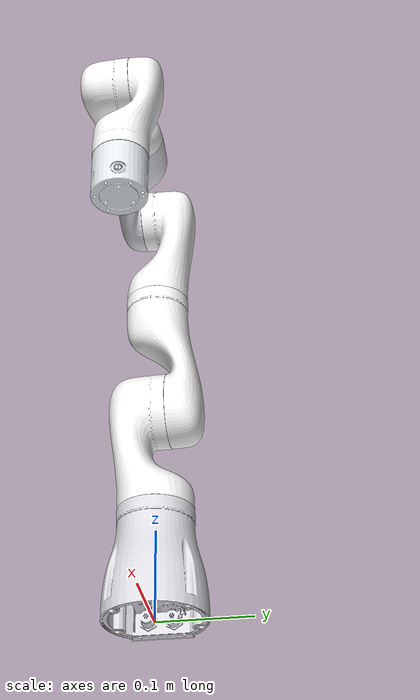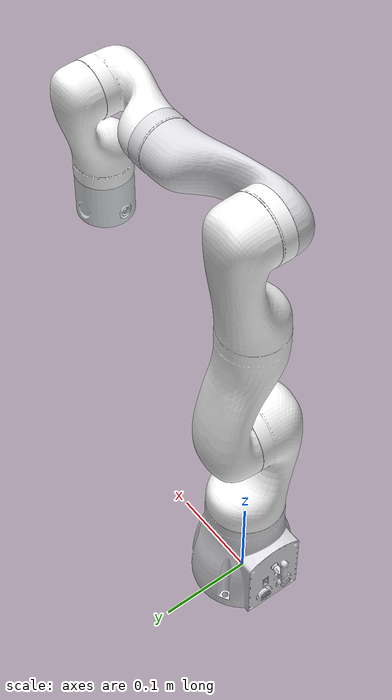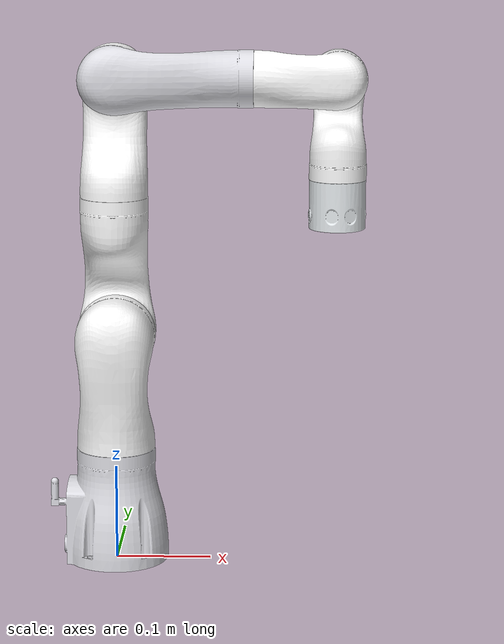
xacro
<?xml version="1.0"?>
<robot xmlns:xacro="http://www.ros.org/wiki/xacro" name="TCB705_05N">
    <xacro:arg name="initial_positions_file" default="initial_positions.yaml" />

    <!-- Import TCB705_05N urdf file -->
    <xacro:include filename="$(find tl_robot_description)/urdf/TCB705_05N.urdf" />

    <!-- Import control_xacro -->
    <xacro:include filename="TCB705_05N.ros2_control.xacro" />

    <xacro:TCB705_05N_ros2_control name="TLHardware" initial_positions_file="$(arg initial_positions_file)"/>

</robot>

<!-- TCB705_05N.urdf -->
<robot
  name="TCB705_05N">
 <mujoco>
    <compiler meshdir="../meshes/TCB705_05N" discardvisual="false"/>
 </mujoco>
  <link
    name="tl_robot_link0">
    <inertial>
      <origin
        xyz="0.0018902 -3.6902E-05 0.048157"
        rpy="0 0 0" />
      <mass
        value="0.43435" />
      <inertia
        ixx="0.00088719"
        ixy="7.0508E-09"
        ixz="3.8148E-05"
        iyy="0.00076562"
        iyz="1.1569E-07"
        izz="0.00087763" />
    </inertial>
    <visual>
      <origin
        xyz="0 0 0"
        rpy="0 0 0" />
      <geometry>
        <mesh
          filename="package://tl_robot_description/meshes/TCB705_05N/tl_robot_link0.STL" />
      </geometry>
      <material
        name="">
        <color
          rgba="0.86667 0.86667 0.8902 1" />
      </material>
    </visual>
    <collision>
      <origin
        xyz="0 0 0"
        rpy="0 0 0" />
      <geometry>
        <mesh
          filename="package://tl_robot_description/meshes/TCB705_05N/tl_robot_link0.STL" />
      </geometry>
    </collision>
  </link>
  <link
    name="tl_robot_link1">
    <inertial>
      <origin
        xyz="3.7218E-06 -0.014376 0.067933"
        rpy="0 0 0" />
      <mass
        value="0.14367" />
      <inertia
        ixx="0.00037046"
        ixy="1.6893E-08"
        ixz="-4.6083E-08"
        iyy="0.00039142"
        iyz="5.9077E-05"
        izz="0.00015862" />
    </inertial>
    <visual>
      <origin
        xyz="0 0 0"
        rpy="0 0 0" />
      <geometry>
        <mesh
          filename="package://tl_robot_description/meshes/TCB705_05N/tl_robot_link1.STL" />
      </geometry>
      <material
        name="">
        <color
          rgba="1 1 1 1" />
      </material>
    </visual>
    <collision>
      <origin
        xyz="0 0 0"
        rpy="0 0 0" />
      <geometry>
        <mesh
          filename="package://tl_robot_description/meshes/TCB705_05N/tl_robot_link1.STL" />
      </geometry>
    </collision>
  </link>
  <joint
    name="tl_robot_joint1"
    type="revolute">
    <origin
      xyz="0 0 0.1224"
      rpy="0 0 0" />
    <parent
      link="tl_robot_link0" />
    <child
      link="tl_robot_link1" />
    <axis
      xyz="0 0 1" />
    <limit
      lower="-3.141592654"
      upper="3.141592654"
      effort="0"
      velocity="0" />
  </joint>
  <link
    name="tl_robot_link2">
    <inertial>
      <origin
        xyz="5.9053E-06 -0.055346 0.0035842"
        rpy="0 0 0" />
      <mass
        value="0.33033" />
      <inertia
        ixx="0.00090573"
        ixy="1.3641E-08"
        ixz="-3.5043E-08"
        iyy="0.0003177"
        iyz="-0.00017413"
        izz="0.00093478" />
    </inertial>
    <visual>
      <origin
        xyz="0 0 0"
        rpy="0 0 0" />
      <geometry>
        <mesh
          filename="package://tl_robot_description/meshes/TCB705_05N/tl_robot_link2.STL" />
      </geometry>
      <material
        name="">
        <color
          rgba="1 1 1 1" />
      </material>
    </visual>
    <collision>
      <origin
        xyz="0 0 0"
        rpy="0 0 0" />
      <geometry>
        <mesh
          filename="package://tl_robot_description/meshes/TCB705_05N/tl_robot_link2.STL" />
      </geometry>
    </collision>
  </link>
  <joint
    name="tl_robot_joint2"
    type="revolute">
    <origin
      xyz="0 0.0155 0.1196"
      rpy="-1.5708 0 0" />
    <parent
      link="tl_robot_link1" />
    <child
      link="tl_robot_link2" />
    <axis
      xyz="0 0 1" />
    <limit
      lower="-2.35619449"
      upper="2.35619449"
      effort="0"
      velocity="0" />
  </joint>
  <link
    name="tl_robot_link3">
    <inertial>
      <origin
        xyz="-0.000132757352653707 0.0133462171351898 0.0637589760194879"
        rpy="0 0 0" />
      <mass
        value="0.302012540986821" />
      <inertia
        ixx="0.000691869705790603"
        ixy="-5.09561031816092E-07"
        ixz="2.6670085177538E-06"
        iyy="0.000719388437057822"
        iyz="-0.000114231544456731"
        izz="0.000253132686095938" />
    </inertial>
    <visual>
      <origin
        xyz="0 0 0"
        rpy="0 0 0" />
      <geometry>
        <mesh
          filename="package://tl_robot_description/meshes/TCB705_05N/tl_robot_link3.STL" />
      </geometry>
      <material
        name="">
        <color
          rgba="1 1 1 1" />
      </material>
    </visual>
    <collision>
      <origin
        xyz="0 0 0"
        rpy="0 0 0" />
      <geometry>
        <mesh
          filename="package://tl_robot_description/meshes/TCB705_05N/tl_robot_link3.STL" />
      </geometry>
    </collision>
  </link>
  <joint
    name="tl_robot_joint3"
    type="revolute">
    <origin
      xyz="0 -0.149 -0.0155"
      rpy="1.5708 0 0" />
    <parent
      link="tl_robot_link2" />
    <child
      link="tl_robot_link3" />
    <axis
      xyz="0 0 1" />
    <limit
      lower="-3.141592654"
      upper="3.141592654"
      effort="0"
      velocity="0" />
  </joint>
  <link
    name="tl_robot_link4">
    <inertial>
      <origin
        xyz="-1.1919E-05 0.056456 0.00097888"
        rpy="0 0 0" />
      <mass
        value="0.24893" />
      <inertia
        ixx="0.0005647"
        ixy="8.1382E-08"
        ixz="-3.1473E-09"
        iyy="0.00016557"
        iyz="0.00010863"
        izz="0.00057614" />
    </inertial>
    <visual>
      <origin
        xyz="0 0 0"
        rpy="0 0 0" />
      <geometry>
        <mesh
          filename="package://tl_robot_description/meshes/TCB705_05N/tl_robot_link4.STL" />
      </geometry>
      <material
        name="">
        <color
          rgba="0.86667 0.86667 0.8902 1" />
      </material>
    </visual>
    <collision>
      <origin
        xyz="0 0 0"
        rpy="0 0 0" />
      <geometry>
        <mesh
          filename="package://tl_robot_description/meshes/TCB705_05N/tl_robot_link4.STL" />
      </geometry>
    </collision>
  </link>
  <joint
    name="tl_robot_joint4"
    type="revolute">
    <origin
      xyz="0 -0.0165 0.121"
      rpy="1.5708 1.5708 0" />
    <parent
      link="tl_robot_link3" />
    <child
      link="tl_robot_link4" />
    <axis
      xyz="0 0 -1" />
    <limit
      lower="-4.101523742"
      upper="0.959931089"
      effort="0"
      velocity="0" />
  </joint>
  <link
    name="tl_robot_link5">
    <inertial>
      <origin
        xyz="7.3099E-05 -0.01274 0.050866"
        rpy="0 0 0" />
      <mass
        value="0.074325" />
      <inertia
        ixx="9.8328E-05"
        ixy="1.1534E-08"
        ixz="8.0626E-10"
        iyy="0.00010098"
        iyz="2.0685E-05"
        izz="4.5428E-05" />
    </inertial>
    <visual>
      <origin
        xyz="0 0 0"
        rpy="0 0 0" />
      <geometry>
        <mesh
          filename="package://tl_robot_description/meshes/TCB705_05N/tl_robot_link5.STL" />
      </geometry>
      <material
        name="">
        <color
          rgba="1 1 1 1" />
      </material>
    </visual>
    <collision>
      <origin
        xyz="0 0 0"
        rpy="0 0 0" />
      <geometry>
        <mesh
          filename="package://tl_robot_description/meshes/TCB705_05N/tl_robot_link5.STL" />
      </geometry>
    </collision>
  </link>
  <joint
    name="tl_robot_joint5"
    type="revolute">
    <origin
      xyz="0 0.1425 -0.0165"
      rpy="-1.5708 0 0" />
    <parent
      link="tl_robot_link4" />
    <child
      link="tl_robot_link5" />
    <axis
      xyz="0 0 1" />
    <limit
      lower="-3.141592654"
      upper="3.141592654"
      effort="0"
      velocity="0" />
  </joint>
  <link
    name="tl_robot_link6">
    <inertial>
      <origin
        xyz="2.8242E-06 -0.038846 0.0038434"
        rpy="0 0 0" />
      <mass
        value="0.066035" />
      <inertia
        ixx="8.4574E-05"
        ixy="-2.4508E-08"
        ixz="-1.1793E-08"
        iyy="4.1686E-05"
        iyz="-1.7128E-05"
        izz="8.4254E-05" />
    </inertial>
    <visual>
      <origin
        xyz="0 0 0"
        rpy="0 0 0" />
      <geometry>
        <mesh
          filename="package://tl_robot_description/meshes/TCB705_05N/tl_robot_link6.STL" />
      </geometry>
      <material
        name="">
        <color
          rgba="1 1 1 1" />
      </material>
    </visual>
    <collision>
      <origin
        xyz="0 0 0"
        rpy="0 0 0" />
      <geometry>
        <mesh
          filename="package://tl_robot_description/meshes/TCB705_05N/tl_robot_link6.STL" />
      </geometry>
    </collision>
  </link>
  <joint
    name="tl_robot_joint6"
    type="revolute">
    <origin
      xyz="0 0.0115 0.0875"
      rpy="-1.5708 1.5708 0" />
    <parent
      link="tl_robot_link5" />
    <child
      link="tl_robot_link6" />
    <axis
      xyz="0 0 1" />
    <limit
      lower="-3.752457892"
      upper="0.610865238"
      effort="0"
      velocity="0" />
  </joint>
  <link
    name="tl_robot_link7">
    <inertial>
      <origin
        xyz="-1.0794E-05 -0.00010862 0.02885"
        rpy="0 0 0" />
      <mass
        value="0.16704" />
      <inertia
        ixx="8.1122E-05"
        ixy="2.2269E-07"
        ixz="-4.7782E-09"
        iyy="8.2788E-05"
        iyz="1.8211E-07"
        izz="9.2705E-05" />
    </inertial>
    <visual>
      <origin
        xyz="0 0 0"
        rpy="0 0 0" />
      <geometry>
        <mesh
          filename="package://tl_robot_description/meshes/TCB705_05N/tl_robot_link7.STL" />
      </geometry>
      <material
        name="">
        <color
          rgba="0.89804 0.91765 0.92941 1" />
      </material>
    </visual>
    <collision>
      <origin
        xyz="0 0 0"
        rpy="0 0 0" />
      <geometry>
        <mesh
          filename="package://tl_robot_description/meshes/TCB705_05N/tl_robot_link7.STL" />
      </geometry>
    </collision>
  </link>
  <joint
    name="tl_robot_joint7"
    type="revolute">
    <origin
      xyz="0 -0.1015 -0.0115"
      rpy="1.5708 0 0" />
    <parent
      link="tl_robot_link6" />
    <child
      link="tl_robot_link7" />
    <axis
      xyz="0 0 1" />
    <limit
      lower="-3.141592654"
      upper="3.141592654"
      effort="0"
      velocity="0" />
  </joint>
  <!-- 修正末端180度偏差的虚拟关节和连杆 -->
  <joint
      name="tl_robot_joint_end"
      type="fixed">
      <origin
          xyz="0 0 0"
          rpy="0 0 -3.14159" />  <!-- 绕Z轴旋转180度修正 -->
      <parent
          link="tl_robot_link7" />
      <child
          link="tl_robot_link_end" />
      <axis
          xyz="0 0 1" />
  </joint>

  <link
      name="tl_robot_link_end">
      <inertial>
          <origin
              xyz="0 0 0"
              rpy="0 0 0" />
          <mass
              value="0.001" />
          <inertia
              ixx="1e-6"
              ixy="0"
              ixz="0"
              iyy="1e-6"
              iyz="0"
              izz="1e-6" />
      </inertial>
      <visual>
          <origin
              xyz="0 0 0"
              rpy="0 0 0" />
          <geometry>
              <box size="0.01 0.01 0.01" />  <!-- 小方块用于可视化 -->
          </geometry>
          <material
              name="eef_color">
              <color
                  rgba="1 0 0 0.5" />  <!-- 红色半透明 -->
          </material>
      </visual>
      <collision>
          <origin
              xyz="0 0 0"
              rpy="0 0 0" />
          <geometry>
              <box size="0.001 0.001 0.001" />  <!-- 很小的碰撞体 -->
          </geometry>
      </collision>
  </link>
</robot>
